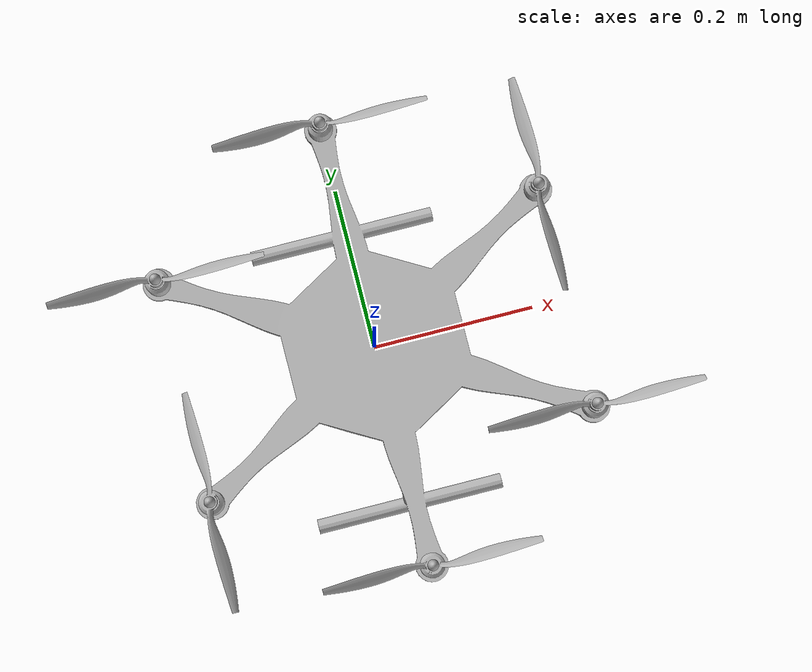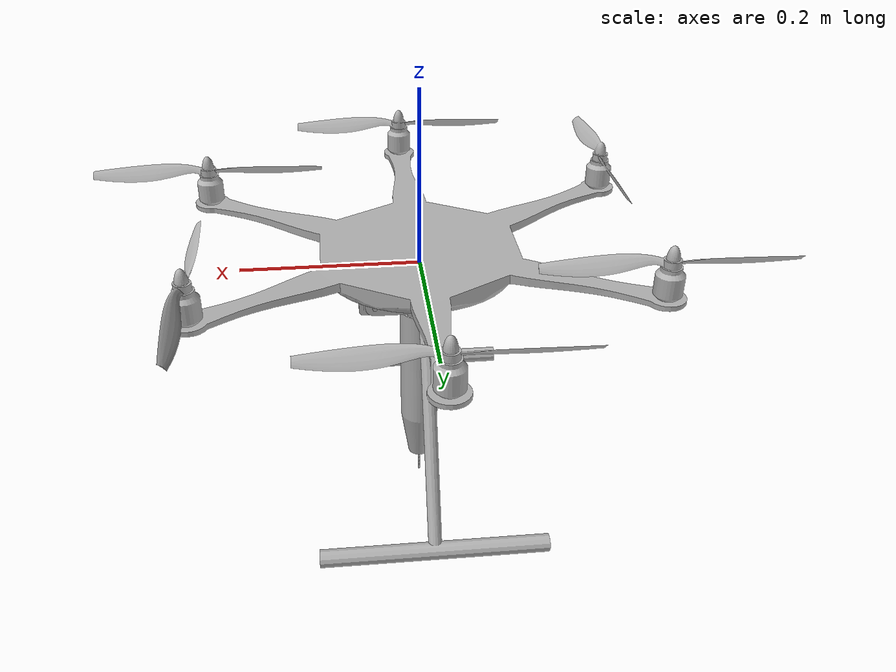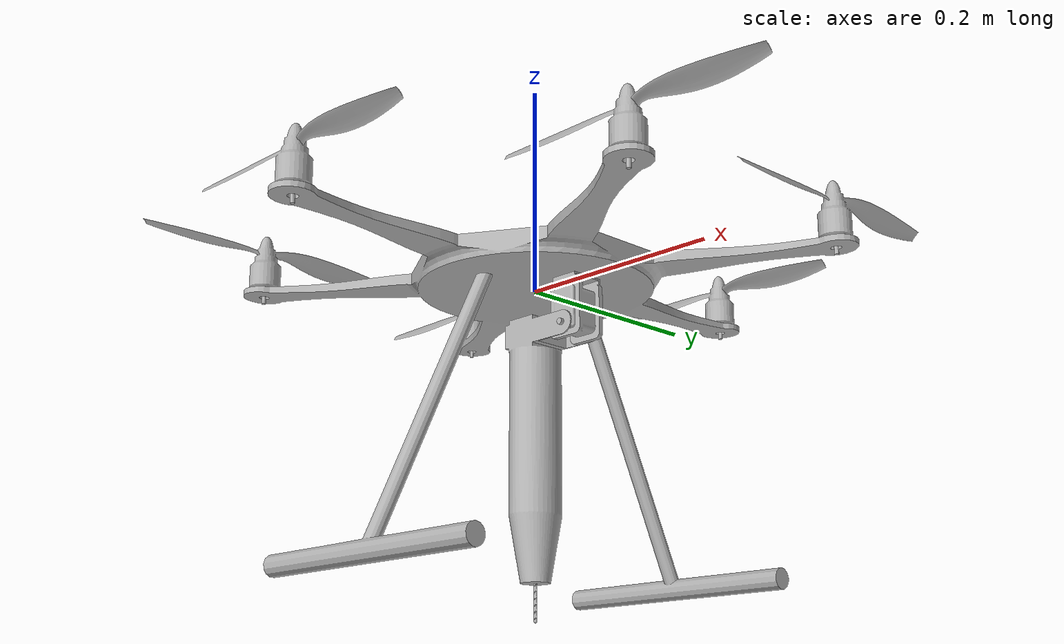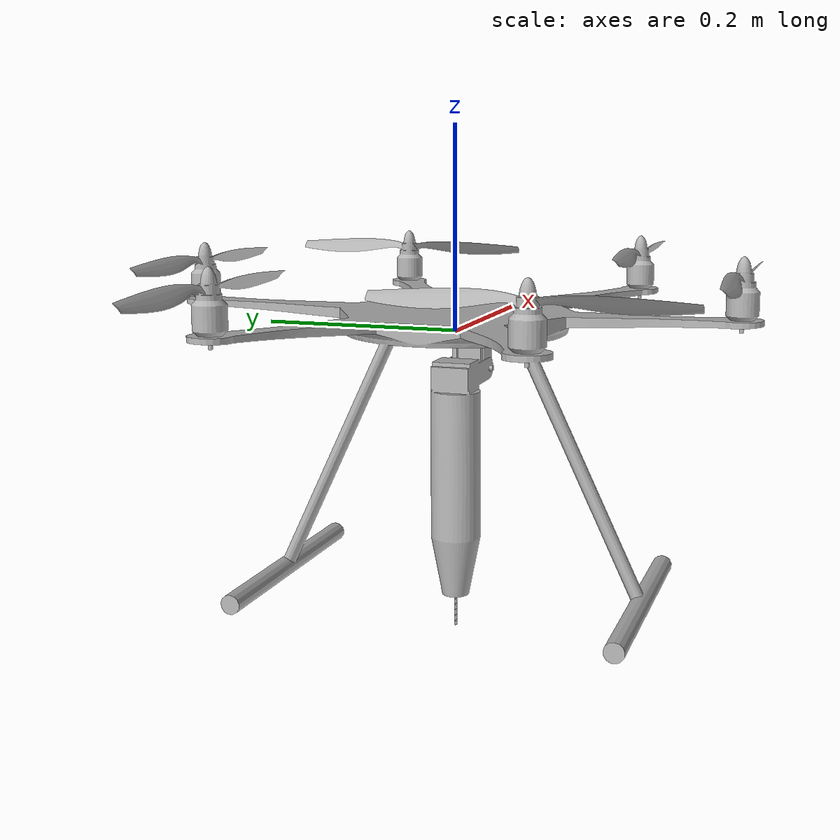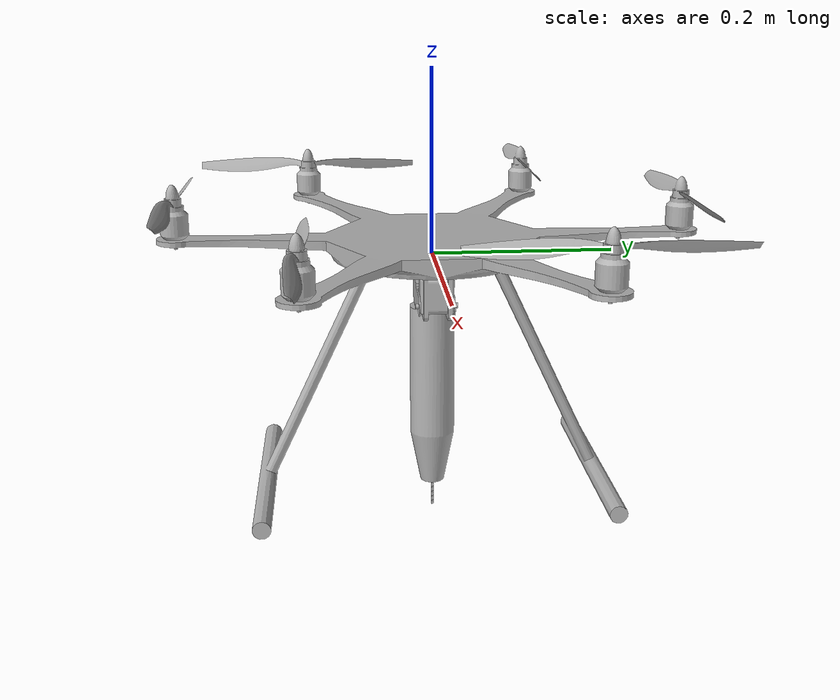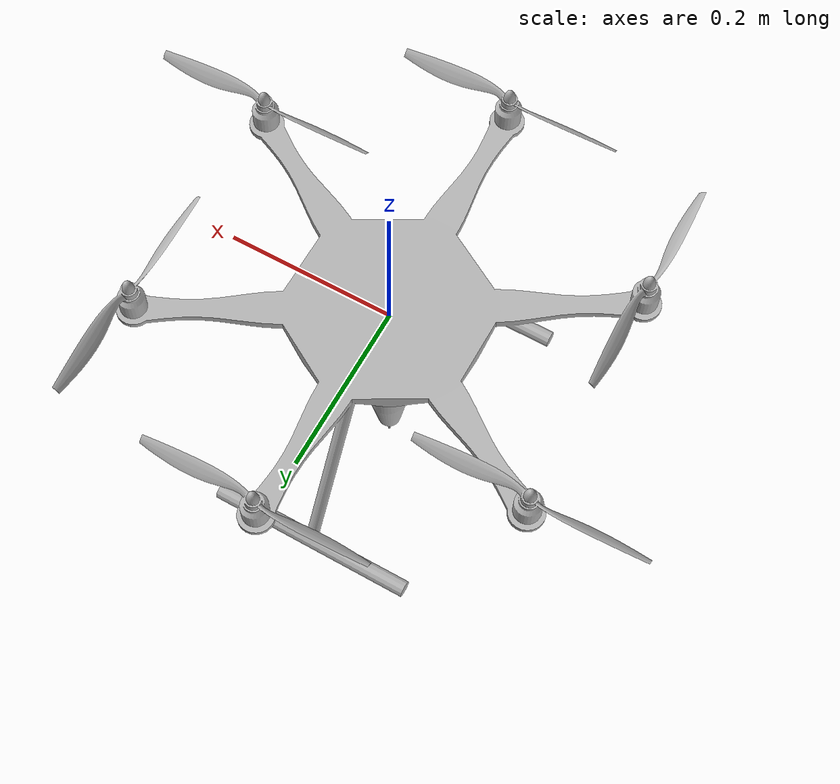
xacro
<?xml version="1.0" ?>
<robot name="Drilling" xmlns:xacro="http://www.ros.org/wiki/xacro">

<xacro:include filename="$(find Drilling_description)/urdf/materials.xacro" />
<xacro:include filename="$(find Drilling_description)/urdf/Drilling.trans" />
<xacro:include filename="$(find Drilling_description)/urdf/Drilling.gazebo" />
<link name="base_link">
  <inertial>
    <origin xyz="0.0007409944454271297 -0.00018575300431278248 -0.03004710734399212" rpy="0 0 0"/>
    <mass value="1.4011736369087806"/>
    <inertia ixx="0.027819" iyy="0.021092" izz="0.024068" ixy="-0.0" iyz="-0.0" ixz="0.0"/>
  </inertial>
  <visual>
    <origin xyz="0 0 0" rpy="0 0 0"/>
    <geometry>
      <mesh filename="package://Drilling_description/meshes/base_link.stl" scale="0.001 0.001 0.001"/>
    </geometry>
    <material name="silver"/>
  </visual>
  <collision>
    <origin xyz="0 0 0" rpy="0 0 0"/>
    <geometry>
      <mesh filename="package://Drilling_description/meshes/base_link.stl" scale="0.001 0.001 0.001"/>
    </geometry>
  </collision>
</link>

<link name="Component2_1">
  <inertial>
    <origin xyz="-9.957231572599312e-08 2.724718541069482e-07 0.02214285551193418" rpy="0 0 0"/>
    <mass value="0.02997397356005734"/>
    <inertia ixx="2.3e-05" iyy="7e-06" izz="1.9e-05" ixy="-0.0" iyz="0.0" ixz="-0.0"/>
  </inertial>
  <visual>
    <origin xyz="0.237414 0.137686 -0.022556" rpy="0 0 0"/>
    <geometry>
      <mesh filename="package://Drilling_description/meshes/Component2_1.stl" scale="0.001 0.001 0.001"/>
    </geometry>
    <material name="silver"/>
  </visual>
  <collision>
    <origin xyz="0.237414 0.137686 -0.022556" rpy="0 0 0"/>
    <geometry>
      <mesh filename="package://Drilling_description/meshes/Component2_1.stl" scale="0.001 0.001 0.001"/>
    </geometry>
  </collision>
</link>

<link name="Component2_2">
  <inertial>
    <origin xyz="-1.1702442880446445e-07 2.940560291930794e-07 0.022142855511934123" rpy="0 0 0"/>
    <mass value="0.02997397356005734"/>
    <inertia ixx="7e-06" iyy="2.3e-05" izz="1.9e-05" ixy="0.0" iyz="-0.0" ixz="-0.0"/>
  </inertial>
  <visual>
    <origin xyz="-0.000743 0.275186 -0.022556" rpy="0 0 0"/>
    <geometry>
      <mesh filename="package://Drilling_description/meshes/Component2_2.stl" scale="0.001 0.001 0.001"/>
    </geometry>
    <material name="silver"/>
  </visual>
  <collision>
    <origin xyz="-0.000743 0.275186 -0.022556" rpy="0 0 0"/>
    <geometry>
      <mesh filename="package://Drilling_description/meshes/Component2_2.stl" scale="0.001 0.001 0.001"/>
    </geometry>
  </collision>
</link>

<link name="Component2_3">
  <inertial>
    <origin xyz="-1.3098370804653925e-07 2.9405602910981266e-07 0.02214285551193418" rpy="0 0 0"/>
    <mass value="0.02997397356005734"/>
    <inertia ixx="7e-06" iyy="2.3e-05" izz="1.9e-05" ixy="0.0" iyz="-0.0" ixz="-0.0"/>
  </inertial>
  <visual>
    <origin xyz="-0.2389 0.137686 -0.022556" rpy="0 0 0"/>
    <geometry>
      <mesh filename="package://Drilling_description/meshes/Component2_3.stl" scale="0.001 0.001 0.001"/>
    </geometry>
    <material name="silver"/>
  </visual>
  <collision>
    <origin xyz="-0.2389 0.137686 -0.022556" rpy="0 0 0"/>
    <geometry>
      <mesh filename="package://Drilling_description/meshes/Component2_3.stl" scale="0.001 0.001 0.001"/>
    </geometry>
  </collision>
</link>

<link name="Component2_4">
  <inertial>
    <origin xyz="-1.5256788316042602e-07 2.9056319558740107e-07 0.02214285551193413" rpy="0 0 0"/>
    <mass value="0.02997397356005734"/>
    <inertia ixx="2.3e-05" iyy="7e-06" izz="1.9e-05" ixy="-0.0" iyz="-0.0" ixz="0.0"/>
  </inertial>
  <visual>
    <origin xyz="-0.2389 -0.137314 -0.022556" rpy="0 0 0"/>
    <geometry>
      <mesh filename="package://Drilling_description/meshes/Component2_4.stl" scale="0.001 0.001 0.001"/>
    </geometry>
    <material name="silver"/>
  </visual>
  <collision>
    <origin xyz="-0.2389 -0.137314 -0.022556" rpy="0 0 0"/>
    <geometry>
      <mesh filename="package://Drilling_description/meshes/Component2_4.stl" scale="0.001 0.001 0.001"/>
    </geometry>
  </collision>
</link>

<link name="Component2_5">
  <inertial>
    <origin xyz="-1.3511576994133367e-07 2.6897902039024757e-07 0.02214285551193417" rpy="0 0 0"/>
    <mass value="0.02997397356005734"/>
    <inertia ixx="7e-06" iyy="2.3e-05" izz="1.9e-05" ixy="0.0" iyz="0.0" ixz="0.0"/>
  </inertial>
  <visual>
    <origin xyz="-0.000743 -0.274814 -0.022556" rpy="0 0 0"/>
    <geometry>
      <mesh filename="package://Drilling_description/meshes/Component2_5.stl" scale="0.001 0.001 0.001"/>
    </geometry>
    <material name="silver"/>
  </visual>
  <collision>
    <origin xyz="-0.000743 -0.274814 -0.022556" rpy="0 0 0"/>
    <geometry>
      <mesh filename="package://Drilling_description/meshes/Component2_5.stl" scale="0.001 0.001 0.001"/>
    </geometry>
  </collision>
</link>

<link name="Component2_6">
  <inertial>
    <origin xyz="-1.2115649092314662e-07 2.6897902050126987e-07 0.022142855511934144" rpy="0 0 0"/>
    <mass value="0.02997397356005734"/>
    <inertia ixx="7e-06" iyy="2.3e-05" izz="1.9e-05" ixy="0.0" iyz="0.0" ixz="0.0"/>
  </inertial>
  <visual>
    <origin xyz="0.237414 -0.137314 -0.022556" rpy="0 0 0"/>
    <geometry>
      <mesh filename="package://Drilling_description/meshes/Component2_6.stl" scale="0.001 0.001 0.001"/>
    </geometry>
    <material name="silver"/>
  </visual>
  <collision>
    <origin xyz="0.237414 -0.137314 -0.022556" rpy="0 0 0"/>
    <geometry>
      <mesh filename="package://Drilling_description/meshes/Component2_6.stl" scale="0.001 0.001 0.001"/>
    </geometry>
  </collision>
</link>

<link name="Component3_1">
  <inertial>
    <origin xyz="7.912531740927875e-12 -1.9775532191693154e-12 -0.030064400329856678" rpy="0 0 0"/>
    <mass value="0.047497097171063256"/>
    <inertia ixx="1.4e-05" iyy="1.2e-05" izz="9e-06" ixy="0.0" iyz="0.0" ixz="0.0"/>
  </inertial>
  <visual>
    <origin xyz="-0.0525 0.0 -0.0" rpy="0 0 0"/>
    <geometry>
      <mesh filename="package://Drilling_description/meshes/Component3_1.stl" scale="0.001 0.001 0.001"/>
    </geometry>
    <material name="silver"/>
  </visual>
  <collision>
    <origin xyz="-0.0525 0.0 -0.0" rpy="0 0 0"/>
    <geometry>
      <mesh filename="package://Drilling_description/meshes/Component3_1.stl" scale="0.001 0.001 0.001"/>
    </geometry>
  </collision>
</link>

<link name="Component5_1">
  <inertial>
    <origin xyz="3.705164159425317e-12 -7.924302410511538e-14 -0.017021191173281436" rpy="0 0 0"/>
    <mass value="0.00021466150433616682"/>
    <inertia ixx="0.0" iyy="0.0" izz="0.0" ixy="-0.0" iyz="0.0" ixz="0.0"/>
  </inertial>
  <visual>
    <origin xyz="-0.00025 0.0 0.2696" rpy="0 0 0"/>
    <geometry>
      <mesh filename="package://Drilling_description/meshes/Component5_1.stl" scale="0.001 0.001 0.001"/>
    </geometry>
    <material name="silver"/>
  </visual>
  <collision>
    <origin xyz="-0.00025 0.0 0.2696" rpy="0 0 0"/>
    <geometry>
      <mesh filename="package://Drilling_description/meshes/Component5_1.stl" scale="0.001 0.001 0.001"/>
    </geometry>
  </collision>
</link>

<link name="Component4_1">
  <inertial>
    <origin xyz="-0.0519070291202938 -0.017750708854665134 -0.09645899486628742" rpy="0 0 0"/>
    <mass value="0.4016667315756196"/>
    <inertia ixx="0.001699" iyy="0.001693" izz="0.000111" ixy="0.0" iyz="0.0" ixz="-1.3e-05"/>
  </inertial>
  <visual>
    <origin xyz="-0.0525 -0.01775 0.0446" rpy="0 0 0"/>
    <geometry>
      <mesh filename="package://Drilling_description/meshes/Component4_1.stl" scale="0.001 0.001 0.001"/>
    </geometry>
    <material name="silver"/>
  </visual>
  <collision>
    <origin xyz="-0.0525 -0.01775 0.0446" rpy="0 0 0"/>
    <geometry>
      <mesh filename="package://Drilling_description/meshes/Component4_1.stl" scale="0.001 0.001 0.001"/>
    </geometry>
  </collision>
</link>

<joint name="Rev1" type="continuous">
  <origin xyz="-0.237414 -0.137686 0.022556" rpy="0 0 0"/>
  <parent link="base_link"/>
  <child link="Component2_1"/>
  <axis xyz="0.0 0.0 1.0"/>
</joint>

<joint name="Rev2" type="continuous">
  <origin xyz="0.000743 -0.275186 0.022556" rpy="0 0 0"/>
  <parent link="base_link"/>
  <child link="Component2_2"/>
  <axis xyz="0.0 0.0 1.0"/>
</joint>

<joint name="Rev3" type="continuous">
  <origin xyz="0.2389 -0.137686 0.022556" rpy="0 0 0"/>
  <parent link="base_link"/>
  <child link="Component2_3"/>
  <axis xyz="0.0 0.0 1.0"/>
</joint>

<joint name="Rev4" type="continuous">
  <origin xyz="0.2389 0.137314 0.022556" rpy="0 0 0"/>
  <parent link="base_link"/>
  <child link="Component2_4"/>
  <axis xyz="0.0 0.0 1.0"/>
</joint>

<joint name="Rev5" type="continuous">
  <origin xyz="0.000743 0.274814 0.022556" rpy="0 0 0"/>
  <parent link="base_link"/>
  <child link="Component2_5"/>
  <axis xyz="0.0 0.0 1.0"/>
</joint>

<joint name="Rev6" type="continuous">
  <origin xyz="-0.237414 0.137314 0.022556" rpy="0 0 0"/>
  <parent link="base_link"/>
  <child link="Component2_6"/>
  <axis xyz="0.0 0.0 1.0"/>
</joint>

<joint name="Rigid7" type="fixed">
  <origin xyz="0.0525 0.0 0.0" rpy="0 0 0"/>
  <parent link="base_link"/>
  <child link="Component3_1"/>
</joint>

<joint name="Rev10" type="continuous">
  <origin xyz="-0.05225 -0.01775 -0.225" rpy="0 0 0"/>
  <parent link="Component4_1"/>
  <child link="Component5_1"/>
  <axis xyz="0.0 0.0 -1.0"/>
</joint>

<joint name="Rev11" type="revolute">
  <origin xyz="0.0 0.01775 -0.0446" rpy="0 0 0"/>
  <parent link="Component3_1"/>
  <child link="Component4_1"/>
  <axis xyz="0.0 1.0 0.0"/>
  <limit upper="0.436332" lower="-1.570796" effort="100" velocity="100"/>
</joint>

</robot>

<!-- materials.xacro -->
<robot name="Drilling" xmlns:xacro="http://www.ros.org/wiki/xacro" >

<material name="silver">
  <color rgba="0.700 0.700 0.700 1.000"/>
</material>

</robot>

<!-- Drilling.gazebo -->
<robot name="Drilling" xmlns:xacro="http://www.ros.org/wiki/xacro" >

<xacro:property name="body_color" value="Gazebo/Silver" />

<gazebo>
  <plugin name="control" filename="libgazebo_ros_control.so"/>
</gazebo>
<gazebo reference="base_link">
  <material>${body_color}</material>
  <mu1>0.2</mu1>
  <mu2>0.2</mu2>
  <selfCollide>true</selfCollide>
  <gravity>true</gravity>
</gazebo>

<gazebo reference="Component2_1">
  <material>${body_color}</material>
  <mu1>0.2</mu1>
  <mu2>0.2</mu2>
  <selfCollide>true</selfCollide>
</gazebo>

<gazebo reference="Component2_2">
  <material>${body_color}</material>
  <mu1>0.2</mu1>
  <mu2>0.2</mu2>
  <selfCollide>true</selfCollide>
</gazebo>

<gazebo reference="Component2_3">
  <material>${body_color}</material>
  <mu1>0.2</mu1>
  <mu2>0.2</mu2>
  <selfCollide>true</selfCollide>
</gazebo>

<gazebo reference="Component2_4">
  <material>${body_color}</material>
  <mu1>0.2</mu1>
  <mu2>0.2</mu2>
  <selfCollide>true</selfCollide>
</gazebo>

<gazebo reference="Component2_5">
  <material>${body_color}</material>
  <mu1>0.2</mu1>
  <mu2>0.2</mu2>
  <selfCollide>true</selfCollide>
</gazebo>

<gazebo reference="Component2_6">
  <material>${body_color}</material>
  <mu1>0.2</mu1>
  <mu2>0.2</mu2>
  <selfCollide>true</selfCollide>
</gazebo>

<gazebo reference="Component3_1">
  <material>${body_color}</material>
  <mu1>0.2</mu1>
  <mu2>0.2</mu2>
  <selfCollide>true</selfCollide>
</gazebo>

<gazebo reference="Component5_1">
  <material>${body_color}</material>
  <mu1>0.2</mu1>
  <mu2>0.2</mu2>
  <selfCollide>true</selfCollide>
</gazebo>

<gazebo reference="Component4_1">
  <material>${body_color}</material>
  <mu1>0.2</mu1>
  <mu2>0.2</mu2>
  <selfCollide>true</selfCollide>
</gazebo>

</robot>
